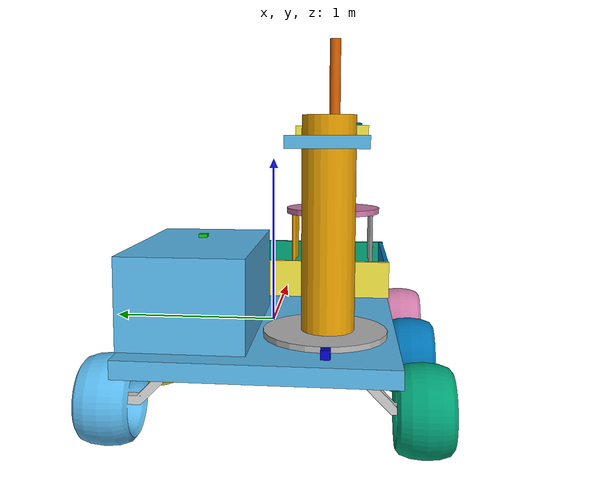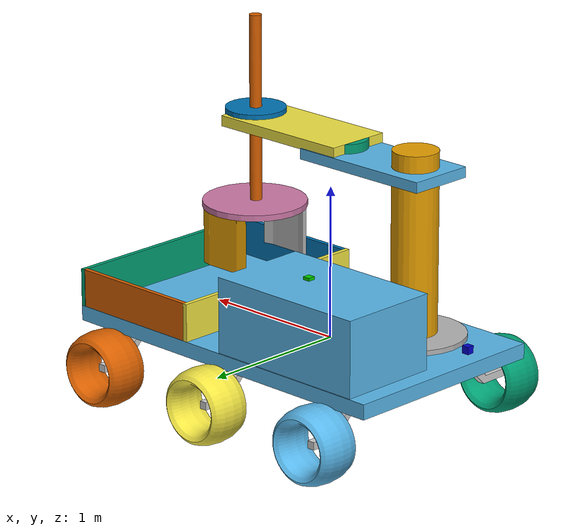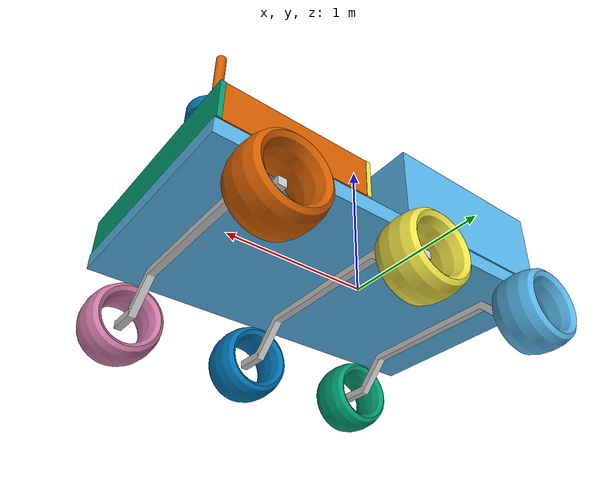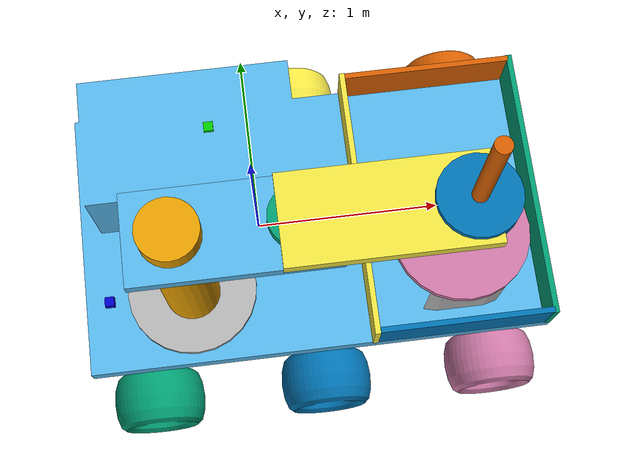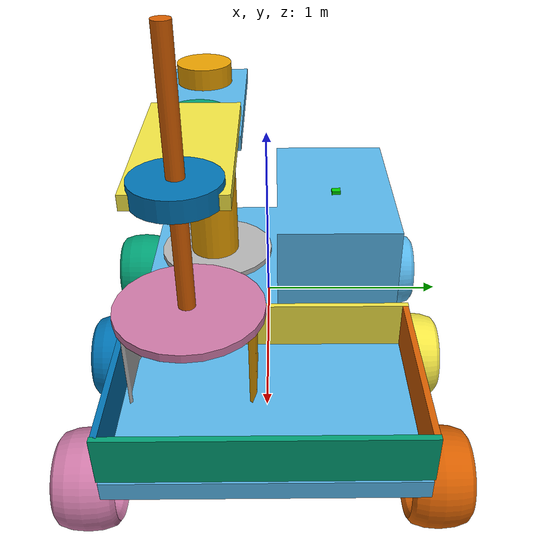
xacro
<?xml version="1.0"?>
<robot name="rover" xmlns:xacro="http://www.ros.org/xacro">

  <xacro:include filename="$(find rover_proyect)/urdf/base/robot_base.urdf.xacro"/>
  <xacro:include filename="$(find rover_proyect)/urdf/wheels/wheels.urdf.xacro"/>
  <xacro:include filename="$(find rover_proyect)/urdf/arm/scara.urdf.xacro"/>
  <xacro:include filename="$(find rover_proyect)/urdf/arm/gripper.urdf.xacro"/>
  <xacro:include filename="$(find rover_proyect)/urdf/sensors/camera_sensor.urdf.xacro"/>
  <xacro:include filename="$(find rover_proyect)/urdf/sensors/imu_sensor.urdf.xacro"/>

  <xacro:robot_base/>
  <xacro:wheels parent="Base_link"/>
  <xacro:scara parent="Base_link"/>
  <xacro:gripper parent="AjustaAlturaPinza_link"/>

  <xacro:imu_sensor
    prefix="imu"
    topic="/imu/data"
    parent_link="Base_link"
    xyz="-0.2 0.4 0.55"
    rpy="0 0 0"/>

  <!-- Cámara frontal -->
  <xacro:camera_sensor
    frame_prefix="front"
    parent_link="Base_link"
    xyz="-0.85 -0.35 0.05"
    rpy="0 0 0"
    horizontal_fov="60"
    video_width="640"
    video_height="480"
    optical_rpy="3.14 3.14 0"/>

  <!-- Cámara del brazo: eslabón final -->
  <xacro:camera_sensor
    frame_prefix="arm"
    parent_link="CilindroPinza2_link"
    xyz="0.0 0.0 -0.05"
    rpy="0 0 0"
    horizontal_fov="60"
    video_width="640"
    video_height="480"
    optical_rpy="0 1.57 0"/>

  <xacro:include filename="$(find rover_proyect)/urdf/ros2_control.urdf.xacro"/>
  <xacro:arg name="config_controllers" default="$(find rover_proyect)/config/rover_controllers.yaml"/>
  <xacro:arg name="update_rate" default="20"/>
  <xacro:ros2_control/>

</robot>

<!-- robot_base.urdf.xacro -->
<robot name="robot" xmlns:xacro="http://wiki.ros.org/xacro">

  <xacro:macro name="robot_base" params="">
    <link name="base_footprint"/>

    <joint name="base_footprint_joint" type="fixed">
      <origin rpy="0 0 0" xyz="0 0 0"/>
      <parent link="base_footprint"/>
      <child link="Base_link"/>
    </joint>

    <link name="Base_link">
      <visual name="Base">
        <material name="None"/>
        <origin rpy="0.00000 0.00000 0.00000" xyz="-0.88269 0.00000 -0.29771"/>
        <geometry>
          <mesh filename="package://rover_proyect/meshes/dae/Cube.042.dae" scale="1.25000 0.97696 1.00000"/>
        </geometry>
      </visual>
      <collision>
        <origin rpy="0 0 0" xyz="-0.88269 0 -0.29771"/>
        <geometry>
          <mesh filename="package://rover_proyect/meshes/dae/Cube.042.dae" scale="1.25000 0.97696 1.00000"/>
        </geometry>
      </collision>
      <inertial>
        <mass value="50.0"/>
        <origin rpy="0 0 0" xyz="0.267 0 0.225"/>
        <inertia ixx="10.0" ixy="0" ixz="0" iyy="10.0" iyz="0" izz="10.0"/>
      </inertial>
    </link>

    <xacro:macro name="wall" params="name xyz rpy size offset">

      <joint name="${name}_joint" type="fixed">
        <origin xyz="${xyz}" rpy="${rpy}"/>
        <parent link="Base_link"/>
        <child link="${name}_link"/>
      </joint>

      <link name="${name}_link">
        <visual>
          <origin xyz="${offset}" rpy="0 0 0"/>
          <geometry>
            <box size="${size}"/>
          </geometry>
        </visual>

        <collision>
          <origin xyz="${offset}" rpy="0 0 0"/>
          <geometry>
            <box size="${size}"/>
          </geometry>
        </collision>

        <inertial>
          <mass value="0.1"/>
          <origin xyz="0 0 0" rpy="0 0 0"/>
          <inertia ixx="0.01" iyy="0.01" izz="0.01"
                   ixy="0" ixz="0" iyz="0"/>
        </inertial>
      </link>

    </xacro:macro>

    <xacro:wall name="Pared1"
                xyz="1.01230 0 0.15044"
                rpy="0 0 0"
                size="0.03 1.48 0.25"
                offset="0.48273 0 0"/>

    <xacro:wall name="Pared2"
                xyz="0.07147 0 0.15044"
                rpy="0 0 -3.14159"
                size="0.03 1.48 0.25"
                offset="-0.48273 0 0"/>

    <xacro:wall name="Pared3"
                xyz="0.54692 -0.72127 0.15044"
                rpy="0 0 1.57080"
                size="0.03 0.92 0.25"
                offset="0 -0.48273 0"/>

    <xacro:wall name="Pared4"
                xyz="0.54511 0.72236 0.15044"
                rpy="0 0 -1.57080"
                size="0.03 0.92 0.25"
                offset="0 0.48273 0"/>

  </xacro:macro>
</robot>

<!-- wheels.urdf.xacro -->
<robot name="wheels" xmlns:xacro="http://www.ros.org/xacro">

  <xacro:macro name="wheels" params="parent">

    <joint name="Axis1_link_joint" type="fixed">
      <origin rpy="0 0 -3.13536" xyz="-0.88055 0.00139 -0.08971"/>
      <parent link="${parent}"/>
      <child link="Axis1_link"/>
    </joint>

    <joint name="Axis2_link_joint" type="fixed">
      <origin rpy="0 0 -3.13536" xyz="0.05611 0.00545 -0.09470"/>
      <parent link="${parent}"/>
      <child link="Axis2_link"/>
    </joint>

    <joint name="Axis3_link_joint" type="fixed">
      <origin rpy="0 0 -3.13536" xyz="0.98860 -0.00742 -0.08702"/>
      <parent link="${parent}"/>
      <child link="Axis3_link"/>
    </joint>

    <xacro:macro name="axis" params="name mesh xyz">
      <link name="${name}_link">
        <visual>
          <origin rpy="0 0 0" xyz="${xyz}"/>
          <geometry>
            <mesh filename="${mesh}" scale="0.025 0.25 0.025"/>
          </geometry>
        </visual>
        <collision>
          <geometry><box size="0.05 1.8 0.05"/></geometry>
        </collision>
        <inertial>
          <mass value="1.0"/>
          <inertia ixx="0.1" iyy="0.1" izz="0.1" ixy="0" ixz="0" iyz="0"/>
        </inertial>
      </link>
    </xacro:macro>

    <xacro:axis name="Axis1" mesh="package://rover_proyect/meshes/dae/Cube.005.dae" xyz="-0.22252 -0.22955 -0.00816"/>
    <xacro:axis name="Axis2" mesh="package://rover_proyect/meshes/dae/Cube.006.dae" xyz="-0.22275 -0.22549 -0.00317"/>
    <xacro:axis name="Axis3" mesh="package://rover_proyect/meshes/dae/Cube.008.dae" xyz="-0.21856 -0.23838 -0.01085"/>

    <xacro:macro name="wheel" params="name parent xyz rpy mesh flip">

      <joint name="${name}_joint" type="continuous">
        <limit effort="100.0" velocity="20.0"/>
        <origin xyz="${xyz}" rpy="${rpy}"/>
        <parent link="${parent}"/>
        <child link="${name}_link"/>
        <axis xyz="0 0 1"/>
      </joint>

      <link name="${name}_link">
        <visual>
          <origin xyz="0 0 0" rpy="${flip}"/>
          <geometry>
            <mesh filename="${mesh}" scale="0.2 0.2 0.6"/>
          </geometry>
        </visual>
        <collision>
          <geometry><cylinder radius="0.18" length="0.15"/></geometry>
          <surface>
            <friction>
              <ode>
                <mu>1.000000</mu>
                <mu2>1.000000</mu2>
                <fdir1>0.000000 0.000000 1.000000</fdir1>
                <slip1>0.500000</slip1>
                <slip2>0.500000</slip2>
              </ode>
            </friction>
          </surface>
        </collision>
        <inertial>
          <mass value="2.0"/>
          <inertia ixx="0.05" iyy="0.05" izz="0.05" ixy="0" ixz="0" iyz="0"/>
        </inertial>
      </link>

      <transmission name="${name}_trans">
        <type>transmission_interface/SimpleTransmission</type>
        <joint name="${name}_joint">
          <hardwareInterface>hardware_interface/VelocityJointInterface</hardwareInterface>
        </joint>
        <actuator name="${name}_motor">
          <mechanicalReduction>1</mechanicalReduction>
        </actuator>
      </transmission>

      <gazebo reference="${name}_link">
        <mu1>5.0</mu1>
        <mu2>5.0</mu2>
      </gazebo>

    </xacro:macro>

    <xacro:wheel name="Rueda1Drcha" parent="Axis1_link"
                 xyz="-0.22424 -0.82753 -0.20939"
                 rpy="1.57080 0 0"
                 mesh="package://rover_proyect/meshes/dae/Torus.003.dae"
                 flip="0 0 0"/>

    <xacro:wheel name="Rueda1Izq" parent="Axis1_link"
                 xyz="-0.21372 0.86399 -0.20801"
                 rpy="-1.57080 0 3.13536"
                 mesh="package://rover_proyect/meshes/dae/Torus.dae"
                 flip="3.14159 0 0"/>

    <xacro:wheel name="Rueda2Drcha" parent="Axis2_link"
                 xyz="-0.22447 -0.82347 -0.20439"
                 rpy="1.57080 0 0"
                 mesh="package://rover_proyect/meshes/dae/Torus.005.dae"
                 flip="0 0 0"/>

    <xacro:wheel name="Rueda2Izq" parent="Axis2_link"
                 xyz="-0.21395 0.86806 -0.20301"
                 rpy="-1.57080 0 3.13536"
                 mesh="package://rover_proyect/meshes/dae/Torus.004.dae"
                 flip="3.14159 0 0"/>

    <xacro:wheel name="Rueda3Drcha" parent="Axis3_link"
                 xyz="-0.22028 -0.83636 -0.21208"
                 rpy="1.57080 0 0"
                 mesh="package://rover_proyect/meshes/dae/Torus.009.dae"
                 flip="0 0 0"/>

    <xacro:wheel name="Rueda3Izq" parent="Axis3_link"
                 xyz="-0.20976 0.85516 -0.21070"
                 rpy="-1.57080 0 3.13536"
                 mesh="package://rover_proyect/meshes/dae/Torus.008.dae"
                 flip="3.14159 0 0"/>

  </xacro:macro>

</robot>

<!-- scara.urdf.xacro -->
<robot name="scara" xmlns:xacro="http://wiki.ros.org/xacro">

  <xacro:macro name="scara" params="parent">

    <joint name="PinzaBase_link_joint" type="fixed">
      <origin rpy="0 0 0" xyz="-0.43433 -0.39334 0.03490"/>
      <parent link="${parent}"/>
      <child link="PinzaBase_link"/>
    </joint>

    <joint name="PinzaBarra_link_joint" type="revolute">
      <limit lower="-3.14000" upper="3.14000" effort="100.0" velocity="3.0"/>
      <origin rpy="0 0 0" xyz="0.03724 0.04687 0.61833"/>
      <parent link="PinzaBase_link"/>
      <child link="PinzaBarra_link"/>
      <axis xyz="0 0 1"/>
    </joint>

    <joint name="L1Barra_link_joint" type="fixed">
      <origin rpy="0 1.57080 0" xyz="0.27880 0.00490 0.45367"/>
      <parent link="PinzaBarra_link"/>
      <child link="L1Barra_link"/>
    </joint>

    <joint name="Cylinder_link_joint" type="revolute">
      <limit lower="-1.57000" upper="1.57000" effort="100.0" velocity="5.0"/>
      <origin rpy="0 -1.57080 0" xyz="-0.02160 0.00515 0.31468"/>
      <parent link="L1Barra_link"/>
      <child link="Cylinder_link"/>
      <axis xyz="0 0 1"/>
    </joint>

    <joint name="L2Barra_link_joint" type="fixed">
      <origin rpy="0 0 0" xyz="0.39973 -0.01444 0.04107"/>
      <parent link="Cylinder_link"/>
      <child link="L2Barra_link"/>
    </joint>

    <joint name="CilindroPinza1_link_joint" type="revolute">
      <limit lower="-3.14000" upper="3.14000" effort="100.0" velocity="3.0"/>
      <origin rpy="0 0 0" xyz="0.41138 0.00017 0.01680"/>
      <parent link="L2Barra_link"/>
      <child link="CilindroPinza1_link"/>
      <axis xyz="0 0 1"/>
    </joint>

    <joint name="AjustaAlturaPinza_link_joint" type="prismatic">
      <limit lower="-1.0" upper="0.5" effort="100.0" velocity="2.0"/>
      <origin rpy="0 0 0" xyz="0.00070 0.00096 -0.06794"/>
      <parent link="CilindroPinza1_link"/>
      <child link="AjustaAlturaPinza_link"/>
      <axis xyz="0 0 1"/>
    </joint>

    <link name="PinzaBase_link">
      <visual name="PinzaBase">
        <material name="None"/>
        <origin rpy="0 0 0" xyz="0.03531 0.06165 0"/>
        <geometry><cylinder radius="0.35000" length="0.04000"/></geometry>
      </visual>
      <collision>
        <origin rpy="0 0 0" xyz="0.03531 0.06165 0"/>
        <geometry><cylinder radius="0.35000" length="0.04000"/></geometry>
      </collision>
      <inertial>
        <mass value="1.0"/>
        <origin rpy="0 0 0" xyz="0 0 0"/>
        <inertia ixx="0.1" ixy="0" ixz="0" iyy="0.1" iyz="0" izz="0.1"/>
      </inertial>
    </link>

    <link name="PinzaBarra_link">
      <visual name="PinzaBarra">
        <material name="None"/>
        <origin rpy="0 0 0" xyz="0 0 0"/>
        <geometry><cylinder radius="0.15000" length="1.20000"/></geometry>
      </visual>
      <collision>
        <origin rpy="0 0 0" xyz="0 0 0"/>
        <geometry><cylinder radius="0.15" length="1.20"/></geometry>
      </collision>
      <inertial>
        <mass value="1.5"/>
        <origin rpy="0 0 0" xyz="0 0 0"/>
        <inertia ixx="0.2" ixy="0" ixz="0" iyy="0.2" iyz="0" izz="0.05"/>
      </inertial>
    </link>

    <link name="L1Barra_link">
      <visual name="L1Barra">
        <material name="None"/>
        <origin rpy="0 -1.57080 0" xyz="0 0 0"/>
        <geometry><box size="1.00000 0.45000 0.07000"/></geometry>
      </visual>
      <collision>
        <origin rpy="0 -1.57080 0" xyz="0 0 0"/>
        <geometry><box size="1.00000 0.45000 0.07000"/></geometry>
      </collision>
      <inertial>
        <mass value="1.0"/>
        <origin rpy="0 0 0" xyz="0 0 0"/>
        <inertia ixx="0.1" ixy="0" ixz="0" iyy="0.1" iyz="0" izz="0.1"/>
      </inertial>
    </link>

    <link name="Cylinder_link">
      <visual name="Cylinder">
        <material name="None"/>
        <origin rpy="0 0 0" xyz="0 0 0"/>
        <geometry><cylinder radius="0.15000" length="0.15000"/></geometry>
      </visual>
      <collision>
        <origin rpy="0 0 0" xyz="0 0 0"/>
        <geometry><cylinder radius="0.15" length="0.15"/></geometry>
      </collision>
      <inertial>
        <mass value="0.5"/>
        <origin rpy="0 0 0" xyz="0 0 0"/>
        <inertia ixx="0.05" ixy="0" ixz="0" iyy="0.05" iyz="0" izz="0.05"/>
      </inertial>
    </link>

    <link name="L2Barra_link">
      <visual name="L2Barra">
        <material name="None"/>
        <origin rpy="0 0 0" xyz="0 0 0"/>
        <geometry><box size="1.00000 0.45000 0.07000"/></geometry>
      </visual>
      <collision>
        <origin rpy="0 0 0" xyz="0 0 0"/>
        <geometry><box size="1.0 0.45 0.07"/></geometry>
      </collision>
      <inertial>
        <mass value="1.0"/>
        <origin rpy="0 0 0" xyz="0 0 0"/>
        <inertia ixx="0.1" ixy="0" ixz="0" iyy="0.1" iyz="0" izz="0.1"/>
      </inertial>
    </link>

    <link name="CilindroPinza1_link">
      <visual name="CilindroPinza1">
        <material name="None"/>
        <origin rpy="0 0 0" xyz="0 0 0"/>
        <geometry><cylinder radius="0.20000" length="0.10000"/></geometry>
      </visual>
      <collision>
        <origin rpy="0 0 0" xyz="0 0 0"/>
        <geometry><cylinder radius="0.20" length="0.10"/></geometry>
      </collision>
      <inertial>
        <mass value="0.5"/>
        <origin rpy="0 0 0" xyz="0 0 0"/>
        <inertia ixx="0.05" ixy="0" ixz="0" iyy="0.05" iyz="0" izz="0.05"/>
      </inertial>
    </link>

    <link name="AjustaAlturaPinza_link">
      <visual name="AjustaAlturaPinza">
        <material name="None"/>
        <origin rpy="0 0 0" xyz="0 0 0.10784"/>
        <geometry><cylinder radius="0.04000" length="1.25000"/></geometry>
      </visual>
      <collision>
        <origin rpy="0 0 0" xyz="0 0 0.10784"/>
        <geometry><cylinder radius="0.04" length="1.25"/></geometry>
      </collision>
      <inertial>
        <mass value="0.5"/>
        <origin rpy="0 0 0" xyz="0 0 0"/>
        <inertia ixx="0.05" ixy="0" ixz="0" iyy="0.05" iyz="0" izz="0.05"/>
      </inertial>
    </link>
  </xacro:macro>
</robot>

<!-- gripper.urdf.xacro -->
<robot name="gripper" xmlns:xacro="http://wiki.ros.org/xacro">

  <xacro:macro name="gripper" params="parent">

    <joint name="CilindroPinza2_link_joint" type="fixed">
      <origin rpy="0 0 0" xyz="0.00135 0.00931 -0.53102"/>
      <parent link="${parent}"/>
      <child link="CilindroPinza2_link"/>
    </joint>

    <joint name="Pinza1_link_joint" type="prismatic">
      <limit lower="-0.1" upper="0.3" effort="100.0" velocity="3.0"/>
      <origin rpy="-1.57080 0 0" xyz="-0.00065 -0.29 -0.065"/>
      <parent link="CilindroPinza2_link"/>
      <child link="Pinza1_link"/>
      <axis xyz="0 0 1"/>
    </joint>

    <joint name="Pinza2_link_joint" type="prismatic">
      <limit lower="-0.1" upper="0.3" effort="100.0" velocity="3.0"/>
      <origin rpy="1.57080 0 0" xyz="-0.00246 0.29 -0.065"/>
      <parent link="CilindroPinza2_link"/>
      <child link="Pinza2_link"/>
      <axis xyz="0 0 1"/>
    </joint>

    <link name="CilindroPinza2_link">
      <visual name="CilindroPinza2">
        <material name="None"/>
        <origin rpy="0 0 0" xyz="0 0 0"/>
        <geometry><cylinder radius="0.34500" length="0.04000"/></geometry>
      </visual>
      <collision>
        <origin rpy="0 0 0" xyz="0 0 0"/>
        <geometry><cylinder radius="0.345" length="0.04"/></geometry>
      </collision>
      <inertial>
        <mass value="0.5"/>
        <origin rpy="0 0 0" xyz="0 0 0"/>
        <inertia ixx="0.05" ixy="0" ixz="0" iyy="0.05" iyz="0" izz="0.05"/>
      </inertial>
    </link>

    <link name="Pinza1_link">
      <visual name="Pinza1">
        <material name="None"/>
        <origin rpy="1.57080 0 0" xyz="0 0.12500 0"/>
        <geometry>
          <mesh filename="package://rover_proyect/meshes/dae/Cube.011.dae" scale="0.12500 0.00681 0.20000"/>
        </geometry>
      </visual>
      <collision>
        <origin rpy="1.57080 0 0" xyz="0 0.12500 0"/>
        <geometry>
          <mesh filename="package://rover_proyect/meshes/dae/Cube.011.dae" scale="0.12500 0.00681 0.20000"/>
        </geometry>
      </collision>
      <inertial>
        <mass value="0.3"/>
        <origin rpy="0 0 0" xyz="0 0 0"/>
        <inertia ixx="0.01" ixy="0" ixz="0" iyy="0.01" iyz="0" izz="0.01"/>
      </inertial>
    </link>

    <link name="Pinza2_link">
      <visual name="Pinza2">
        <material name="None"/>
        <origin rpy="1.57080 0 0" xyz="0 -0.12500 0"/>
        <geometry>
          <mesh filename="package://rover_proyect/meshes/dae/Cube.014.dae" scale="0.12500 0.00681 0.20000"/>
        </geometry>
      </visual>
      <collision>
        <origin rpy="1.57080 0 0" xyz="0 -0.12500 0"/>
        <geometry>
          <mesh filename="package://rover_proyect/meshes/dae/Cube.014.dae" scale="0.12500 0.00681 0.20000"/>
        </geometry>
      </collision>
      <inertial>
        <mass value="0.3"/>
        <origin rpy="0 0 0" xyz="0 0 0"/>
        <inertia ixx="0.01" ixy="0" ixz="0" iyy="0.01" iyz="0" izz="0.01"/>
      </inertial>
    </link>
  </xacro:macro>
</robot>

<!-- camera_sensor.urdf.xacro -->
<robot name="camera" xmlns:xacro="http://wiki.ros.org/xacro">

  <xacro:macro name="camera_sensor" params="frame_prefix parent_link xyz rpy horizontal_fov video_width video_height optical_rpy">

    <joint name="${frame_prefix}_camera_joint" type="fixed">
      <origin rpy="${rpy}" xyz="${xyz}"/>
      <parent link="${parent_link}"/>
      <child link="${frame_prefix}_camera_frame"/>
    </joint>

    <link name="${frame_prefix}_camera_frame">
      <visual>
        <origin rpy="0 0 0" xyz="0 0 0"/>
        <geometry><box size="0.05 0.05 0.05"/></geometry>
        <material name="${frame_prefix}_camera_color">
          <color rgba="0.0 0.0 0.8 1.0"/>
        </material>
      </visual>
      <inertial>
        <mass value="0.1"/>
        <origin rpy="0 0 0" xyz="0 0 0"/>
        <inertia ixx="0.001" ixy="0" ixz="0" iyy="0.001" iyz="0" izz="0.001"/>
      </inertial>
    </link>

    <!-- Optical frame: Z apunta donde mira la cámara -->
    <joint name="${frame_prefix}_camera_optical_joint" type="fixed">
      <origin rpy="${optical_rpy}" xyz="0 0 0"/>
      <parent link="${frame_prefix}_camera_frame"/>
      <child link="${frame_prefix}_camera_optical_frame"/>
    </joint>

    <link name="${frame_prefix}_camera_optical_frame"/>

    <gazebo reference="${frame_prefix}_camera_optical_frame">
      <sensor name="${frame_prefix}_sensor" type="camera">
        <visualize>true</visualize>
        <update_rate>30</update_rate>
        <topic>/${frame_prefix}/image</topic>
        <camera>
          <horizontal_fov>${radians(float(horizontal_fov))}</horizontal_fov>
          <image>
            <width>${video_width}</width>
            <height>${video_height}</height>
            <format>R8G8B8</format>
          </image>
          <clip>
            <near>0.10</near>
            <far>15.0</far>
          </clip>
          <noise>
            <type>gaussian</type>
            <mean>0.0</mean>
            <stddev>0.007</stddev>
          </noise>
          <optical_frame_id>${frame_prefix}_camera_optical_frame</optical_frame_id>
        </camera>
      </sensor>
    </gazebo>

  </xacro:macro>

</robot>

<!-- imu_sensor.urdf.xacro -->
<robot name="imu_sensor" xmlns:xacro="http://wiki.ros.org/xacro">

  <xacro:macro name="imu_sensor" params="prefix topic parent_link xyz rpy">

    <joint name="${prefix}_joint" type="fixed">
      <origin rpy="${rpy}" xyz="${xyz}"/>
      <parent link="${parent_link}"/>
      <child link="${prefix}_link"/>
    </joint>

    <link name="${prefix}_link">
      <visual>
        <origin rpy="0 0 0" xyz="0 0 0"/>
        <geometry><box size="0.05 0.05 0.02"/></geometry>
        <material name="imu_color">
          <color rgba="0.0 0.8 0.0 1.0"/>
        </material>
      </visual>
      <inertial>
        <mass value="0.05"/>
        <origin rpy="0 0 0" xyz="0 0 0"/>
        <inertia ixx="0.001" ixy="0" ixz="0" iyy="0.001" iyz="0" izz="0.001"/>
      </inertial>
    </link>

    <gazebo reference="${prefix}_link">
      <sensor name="${prefix}_sensor" type="imu">
        <always_on>1</always_on>
        <update_rate>30</update_rate>
        <topic>${topic}</topic>
      </sensor>
    </gazebo>

  </xacro:macro>

</robot>
